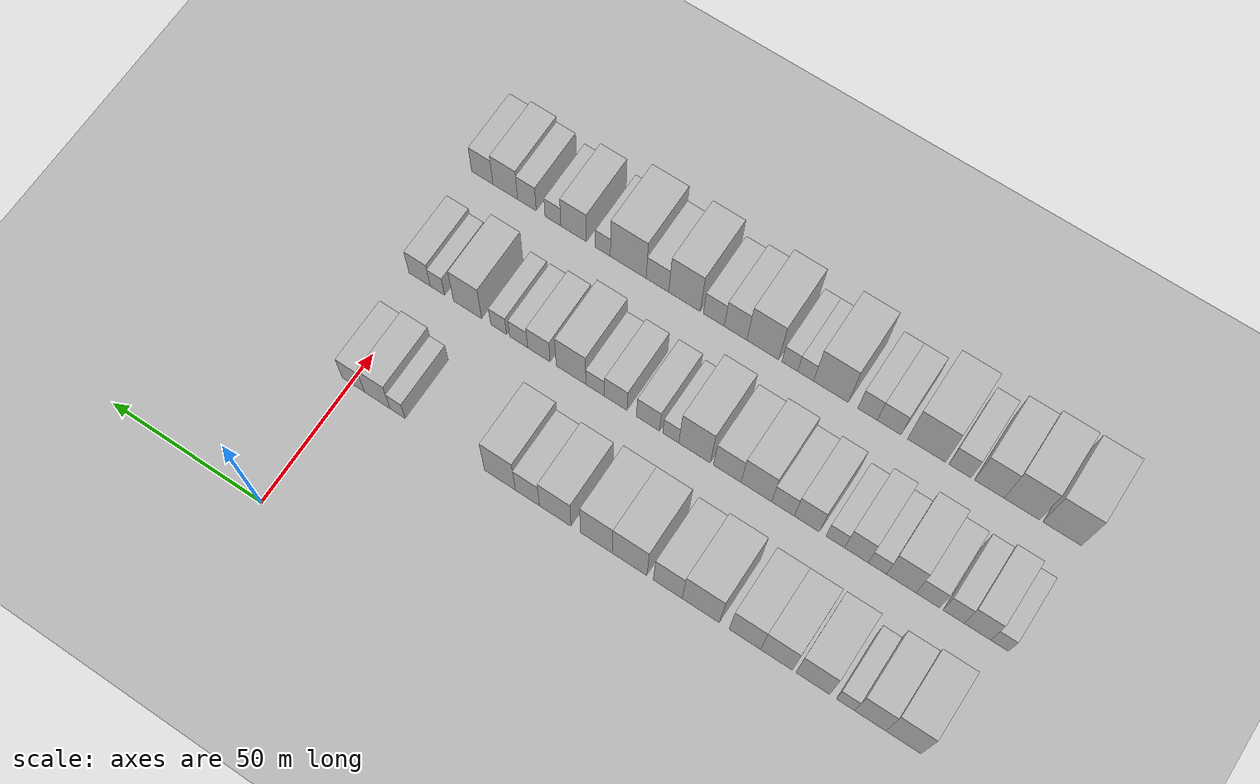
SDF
<sdf version="1.6">
 <world name="default">
  <include><name>ground_plane_1</name><uri>model://HANNAS_ground_plane</uri></include>
  <include>
   <name>ground_plane_2</name>
   <uri>model://HANNAS_ground_plane</uri>
   <pose>100 0 0  0 0 0</pose>
  </include>
  <model name="building_22">
   <static>1</static>
   <pose>50.0000 -173.2291 0 0.000000 0.000000 0.000000</pose>
   <link name="link">
    <pose>0 0 12.00 0 0 0</pose>
    <collision name="collision"><geometry><box><size>20.0000 10.2941 24.0000</size></box></geometry></collision>
    <visual name="visual">
     <cast_shadows>0</cast_shadows>
     <geometry><box><size>20.0000 10.2941 24.0000</size></box></geometry>
     <material>
      <script>
       <uri>model://HANNAS_wall/materials/scripts</uri>
       <uri>model://HANNAS_wall/materials/textures</uri>
       <name>vrc/HANNAS_wall</name>
      </script>
     </material>
    </visual>
   </link>
  </model>
  <model name="building_23">
   <static>1</static>
   <pose>50.0000 -163.5071 0 0.000000 0.000000 0.000000</pose>
   <link name="link">
    <pose>0 0 10.50 0 0 0</pose>
    <collision name="collision"><geometry><box><size>20.0000 9.1499 21.0000</size></box></geometry></collision>
    <visual name="visual">
     <cast_shadows>0</cast_shadows>
     <geometry><box><size>20.0000 9.1499 21.0000</size></box></geometry>
     <material>
      <script>
       <uri>model://HANNAS_wall/materials/scripts</uri>
       <uri>model://HANNAS_wall/materials/textures</uri>
       <name>vrc/HANNAS_wall</name>
      </script>
     </material>
    </visual>
   </link>
  </model>
  <model name="building_24">
   <static>1</static>
   <pose>50.0000 -156.1976 0 0.000000 0.000000 0.000000</pose>
   <link name="link">
    <pose>0 0 6.00 0 0 0</pose>
    <collision name="collision"><geometry><box><size>20.0000 5.4691 12.0000</size></box></geometry></collision>
    <visual name="visual">
     <cast_shadows>0</cast_shadows>
     <geometry><box><size>20.0000 5.4691 12.0000</size></box></geometry>
     <material>
      <script>
       <uri>model://HANNAS_wall/materials/scripts</uri>
       <uri>model://HANNAS_wall/materials/textures</uri>
       <name>vrc/HANNAS_wall</name>
      </script>
     </material>
    </visual>
   </link>
  </model>
  <model name="building_25">
   <static>1</static>
   <pose>50.0000 -146.3815 0 0.000000 0.000000 0.000000</pose>
   <link name="link">
    <pose>0 0 10.50 0 0 0</pose>
    <collision name="collision"><geometry><box><size>20.0000 10.1630 21.0000</size></box></geometry></collision>
    <visual name="visual">
     <cast_shadows>0</cast_shadows>
     <geometry><box><size>20.0000 10.1630 21.0000</size></box></geometry>
     <material>
      <script>
       <uri>model://HANNAS_wall/materials/scripts</uri>
       <uri>model://HANNAS_wall/materials/textures</uri>
       <name>vrc/HANNAS_wall</name>
      </script>
     </material>
    </visual>
   </link>
  </model>
  <model name="building_26">
   <static>1</static>
   <pose>50.0000 -135.4872 0 0.000000 0.000000 0.000000</pose>
   <link name="link">
    <pose>0 0 10.50 0 0 0</pose>
    <collision name="collision"><geometry><box><size>20.0000 9.6257 21.0000</size></box></geometry></collision>
    <visual name="visual">
     <cast_shadows>0</cast_shadows>
     <geometry><box><size>20.0000 9.6257 21.0000</size></box></geometry>
     <material>
      <script>
       <uri>model://HANNAS_wall/materials/scripts</uri>
       <uri>model://HANNAS_wall/materials/textures</uri>
       <name>vrc/HANNAS_wall</name>
      </script>
     </material>
    </visual>
   </link>
  </model>
  <model name="building_27">
   <static>1</static>
   <pose>50.0000 -125.8723 0 0.000000 0.000000 0.000000</pose>
   <link name="link">
    <pose>0 0 10.50 0 0 0</pose>
    <collision name="collision"><geometry><box><size>20.0000 9.6040 21.0000</size></box></geometry></collision>
    <visual name="visual">
     <cast_shadows>0</cast_shadows>
     <geometry><box><size>20.0000 9.6040 21.0000</size></box></geometry>
     <material>
      <script>
       <uri>model://HANNAS_wall/materials/scripts</uri>
       <uri>model://HANNAS_wall/materials/textures</uri>
       <name>vrc/HANNAS_wall</name>
      </script>
     </material>
    </visual>
   </link>
  </model>
  <model name="building_28">
   <static>1</static>
   <pose>50.0000 -112.3370 0 0.000000 0.000000 0.000000</pose>
   <link name="link">
    <pose>0 0 12.00 0 0 0</pose>
    <collision name="collision"><geometry><box><size>20.0000 11.4666 24.0000</size></box></geometry></collision>
    <visual name="visual">
     <cast_shadows>0</cast_shadows>
     <geometry><box><size>20.0000 11.4666 24.0000</size></box></geometry>
     <material>
      <script>
       <uri>model://HANNAS_wall/materials/scripts</uri>
       <uri>model://HANNAS_wall/materials/textures</uri>
       <name>vrc/HANNAS_wall</name>
      </script>
     </material>
    </visual>
   </link>
  </model>
  <model name="building_29">
   <static>1</static>
   <pose>50.0000 -102.1314 0 0.000000 0.000000 0.000000</pose>
   <link name="link">
    <pose>0 0 10.50 0 0 0</pose>
    <collision name="collision"><geometry><box><size>20.0000 8.9447 21.0000</size></box></geometry></collision>
    <visual name="visual">
     <cast_shadows>0</cast_shadows>
     <geometry><box><size>20.0000 8.9447 21.0000</size></box></geometry>
     <material>
      <script>
       <uri>model://HANNAS_wall/materials/scripts</uri>
       <uri>model://HANNAS_wall/materials/textures</uri>
       <name>vrc/HANNAS_wall</name>
      </script>
     </material>
    </visual>
   </link>
  </model>
  <model name="building_30">
   <static>1</static>
   <pose>50.0000 -90.2336 0 0.000000 0.000000 0.000000</pose>
   <link name="link">
    <pose>0 0 12.00 0 0 0</pose>
    <collision name="collision"><geometry><box><size>20.0000 10.8509 24.0000</size></box></geometry></collision>
    <visual name="visual">
     <cast_shadows>0</cast_shadows>
     <geometry><box><size>20.0000 10.8509 24.0000</size></box></geometry>
     <material>
      <script>
       <uri>model://HANNAS_wall/materials/scripts</uri>
       <uri>model://HANNAS_wall/materials/textures</uri>
       <name>vrc/HANNAS_wall</name>
      </script>
     </material>
    </visual>
   </link>
  </model>
  <model name="building_31">
   <static>1</static>
   <pose>50.0000 -79.8051 0 0.000000 0.000000 0.000000</pose>
   <link name="link">
    <pose>0 0 12.00 0 0 0</pose>
    <collision name="collision"><geometry><box><size>20.0000 10.0059 24.0000</size></box></geometry></collision>
    <visual name="visual">
     <cast_shadows>0</cast_shadows>
     <geometry><box><size>20.0000 10.0059 24.0000</size></box></geometry>
     <material>
      <script>
       <uri>model://HANNAS_wall/materials/scripts</uri>
       <uri>model://HANNAS_wall/materials/textures</uri>
       <name>vrc/HANNAS_wall</name>
      </script>
     </material>
    </visual>
   </link>
  </model>
  <model name="building_32">
   <static>1</static>
   <pose>50.0000 -66.7975 0 0.000000 0.000000 0.000000</pose>
   <link name="link">
    <pose>0 0 10.50 0 0 0</pose>
    <collision name="collision"><geometry><box><size>20.0000 10.0093 21.0000</size></box></geometry></collision>
    <visual name="visual">
     <cast_shadows>0</cast_shadows>
     <geometry><box><size>20.0000 10.0093 21.0000</size></box></geometry>
     <material>
      <script>
       <uri>model://HANNAS_wall/materials/scripts</uri>
       <uri>model://HANNAS_wall/materials/textures</uri>
       <name>vrc/HANNAS_wall</name>
      </script>
     </material>
    </visual>
   </link>
  </model>
  <model name="building_33">
   <static>1</static>
   <pose>50.0000 -57.9215 0 0.000000 0.000000 0.000000</pose>
   <link name="link">
    <pose>0 0 9.00 0 0 0</pose>
    <collision name="collision"><geometry><box><size>20.0000 7.7427 18.0000</size></box></geometry></collision>
    <visual name="visual">
     <cast_shadows>0</cast_shadows>
     <geometry><box><size>20.0000 7.7427 18.0000</size></box></geometry>
     <material>
      <script>
       <uri>model://HANNAS_wall/materials/scripts</uri>
       <uri>model://HANNAS_wall/materials/textures</uri>
       <name>vrc/HANNAS_wall</name>
      </script>
     </material>
    </visual>
   </link>
  </model>
  <model name="building_34">
   <static>1</static>
   <pose>50.0000 -49.0845 0 0.000000 0.000000 0.000000</pose>
   <link name="link">
    <pose>0 0 12.00 0 0 0</pose>
    <collision name="collision"><geometry><box><size>20.0000 9.9313 24.0000</size></box></geometry></collision>
    <visual name="visual">
     <cast_shadows>0</cast_shadows>
     <geometry><box><size>20.0000 9.9313 24.0000</size></box></geometry>
     <material>
      <script>
       <uri>model://HANNAS_wall/materials/scripts</uri>
       <uri>model://HANNAS_wall/materials/textures</uri>
       <name>vrc/HANNAS_wall</name>
      </script>
     </material>
    </visual>
   </link>
  </model>
  <model name="building_35">
   <static>1</static>
   <pose>50.0000 -15.6413 0 0.000000 0.000000 0.000000</pose>
   <link name="link">
    <pose>0 0 6.00 0 0 0</pose>
    <collision name="collision"><geometry><box><size>20.0000 4.9850 12.0000</size></box></geometry></collision>
    <visual name="visual">
     <cast_shadows>0</cast_shadows>
     <geometry><box><size>20.0000 4.9850 12.0000</size></box></geometry>
     <material>
      <script>
       <uri>model://HANNAS_wall/materials/scripts</uri>
       <uri>model://HANNAS_wall/materials/textures</uri>
       <name>vrc/HANNAS_wall</name>
      </script>
     </material>
    </visual>
   </link>
  </model>
  <model name="building_36">
   <static>1</static>
   <pose>50.0000 -8.9011 0 0.000000 0.000000 0.000000</pose>
   <link name="link">
    <pose>0 0 9.00 0 0 0</pose>
    <collision name="collision"><geometry><box><size>20.0000 8.4952 18.0000</size></box></geometry></collision>
    <visual name="visual">
     <cast_shadows>0</cast_shadows>
     <geometry><box><size>20.0000 8.4952 18.0000</size></box></geometry>
     <material>
      <script>
       <uri>model://HANNAS_wall/materials/scripts</uri>
       <uri>model://HANNAS_wall/materials/textures</uri>
       <name>vrc/HANNAS_wall</name>
      </script>
     </material>
    </visual>
   </link>
  </model>
  <model name="building_37">
   <static>1</static>
   <pose>50.0000 -0.9262 0 0.000000 0.000000 0.000000</pose>
   <link name="link">
    <pose>0 0 7.50 0 0 0</pose>
    <collision name="collision"><geometry><box><size>20.0000 7.4545 15.0000</size></box></geometry></collision>
    <visual name="visual">
     <cast_shadows>0</cast_shadows>
     <geometry><box><size>20.0000 7.4545 15.0000</size></box></geometry>
     <material>
      <script>
       <uri>model://HANNAS_wall/materials/scripts</uri>
       <uri>model://HANNAS_wall/materials/textures</uri>
       <name>vrc/HANNAS_wall</name>
      </script>
     </material>
    </visual>
   </link>
  </model>
  <model name="building_100">
   <static>1</static>
   <pose>85.0000 -181.3125 0 0.000000 0.000000 0.000000</pose>
   <link name="link">
    <pose>0 0 6.00 0 0 0</pose>
    <collision name="collision"><geometry><box><size>20.0000 5.2404 12.0000</size></box></geometry></collision>
    <visual name="visual">
     <cast_shadows>0</cast_shadows>
     <geometry><box><size>20.0000 5.2404 12.0000</size></box></geometry>
     <material>
      <script>
       <uri>model://HANNAS_wall/materials/scripts</uri>
       <uri>model://HANNAS_wall/materials/textures</uri>
       <name>vrc/HANNAS_wall</name>
      </script>
     </material>
    </visual>
   </link>
  </model>
  <model name="building_101">
   <static>1</static>
   <pose>85.0000 -174.7684 0 0.000000 0.000000 0.000000</pose>
   <link name="link">
    <pose>0 0 9.00 0 0 0</pose>
    <collision name="collision"><geometry><box><size>20.0000 7.8477 18.0000</size></box></geometry></collision>
    <visual name="visual">
     <cast_shadows>0</cast_shadows>
     <geometry><box><size>20.0000 7.8477 18.0000</size></box></geometry>
     <material>
      <script>
       <uri>model://HANNAS_wall/materials/scripts</uri>
       <uri>model://HANNAS_wall/materials/textures</uri>
       <name>vrc/HANNAS_wall</name>
      </script>
     </material>
    </visual>
   </link>
  </model>
  <model name="building_102">
   <static>1</static>
   <pose>85.0000 -167.6820 0 0.000000 0.000000 0.000000</pose>
   <link name="link">
    <pose>0 0 7.50 0 0 0</pose>
    <collision name="collision"><geometry><box><size>20.0000 6.3252 15.0000</size></box></geometry></collision>
    <visual name="visual">
     <cast_shadows>0</cast_shadows>
     <geometry><box><size>20.0000 6.3252 15.0000</size></box></geometry>
     <material>
      <script>
       <uri>model://HANNAS_wall/materials/scripts</uri>
       <uri>model://HANNAS_wall/materials/textures</uri>
       <name>vrc/HANNAS_wall</name>
      </script>
     </material>
    </visual>
   </link>
  </model>
  <model name="building_103">
   <static>1</static>
   <pose>85.0000 -159.9859 0 0.000000 0.000000 0.000000</pose>
   <link name="link">
    <pose>0 0 7.50 0 0 0</pose>
    <collision name="collision"><geometry><box><size>20.0000 7.0670 15.0000</size></box></geometry></collision>
    <visual name="visual">
     <cast_shadows>0</cast_shadows>
     <geometry><box><size>20.0000 7.0670 15.0000</size></box></geometry>
     <material>
      <script>
       <uri>model://HANNAS_wall/materials/scripts</uri>
       <uri>model://HANNAS_wall/materials/textures</uri>
       <name>vrc/HANNAS_wall</name>
      </script>
     </material>
    </visual>
   </link>
  </model>
  <model name="building_104">
   <static>1</static>
   <pose>85.0000 -151.9677 0 0.000000 0.000000 0.000000</pose>
   <link name="link">
    <pose>0 0 10.50 0 0 0</pose>
    <collision name="collision"><geometry><box><size>20.0000 8.9695 21.0000</size></box></geometry></collision>
    <visual name="visual">
     <cast_shadows>0</cast_shadows>
     <geometry><box><size>20.0000 8.9695 21.0000</size></box></geometry>
     <material>
      <script>
       <uri>model://HANNAS_wall/materials/scripts</uri>
       <uri>model://HANNAS_wall/materials/textures</uri>
       <name>vrc/HANNAS_wall</name>
      </script>
     </material>
    </visual>
   </link>
  </model>
  <model name="building_105">
   <static>1</static>
   <pose>85.0000 -144.7261 0 0.000000 0.000000 0.000000</pose>
   <link name="link">
    <pose>0 0 6.00 0 0 0</pose>
    <collision name="collision"><geometry><box><size>20.0000 5.5137 12.0000</size></box></geometry></collision>
    <visual name="visual">
     <cast_shadows>0</cast_shadows>
     <geometry><box><size>20.0000 5.5137 12.0000</size></box></geometry>
     <material>
      <script>
       <uri>model://HANNAS_wall/materials/scripts</uri>
       <uri>model://HANNAS_wall/materials/textures</uri>
       <name>vrc/HANNAS_wall</name>
      </script>
     </material>
    </visual>
   </link>
  </model>
  <model name="building_106">
   <static>1</static>
   <pose>85.0000 -138.3611 0 0.000000 0.000000 0.000000</pose>
   <link name="link">
    <pose>0 0 9.00 0 0 0</pose>
    <collision name="collision"><geometry><box><size>20.0000 7.2162 18.0000</size></box></geometry></collision>
    <visual name="visual">
     <cast_shadows>0</cast_shadows>
     <geometry><box><size>20.0000 7.2162 18.0000</size></box></geometry>
     <material>
      <script>
       <uri>model://HANNAS_wall/materials/scripts</uri>
       <uri>model://HANNAS_wall/materials/textures</uri>
       <name>vrc/HANNAS_wall</name>
      </script>
     </material>
    </visual>
   </link>
  </model>
  <model name="building_107">
   <static>1</static>
   <pose>85.0000 -131.8904 0 0.000000 0.000000 0.000000</pose>
   <link name="link">
    <pose>0 0 6.00 0 0 0</pose>
    <collision name="collision"><geometry><box><size>20.0000 5.7251 12.0000</size></box></geometry></collision>
    <visual name="visual">
     <cast_shadows>0</cast_shadows>
     <geometry><box><size>20.0000 5.7251 12.0000</size></box></geometry>
     <material>
      <script>
       <uri>model://HANNAS_wall/materials/scripts</uri>
       <uri>model://HANNAS_wall/materials/textures</uri>
       <name>vrc/HANNAS_wall</name>
      </script>
     </material>
    </visual>
   </link>
  </model>
  <model name="building_108">
   <static>1</static>
   <pose>85.0000 -123.1505 0 0.000000 0.000000 0.000000</pose>
   <link name="link">
    <pose>0 0 9.00 0 0 0</pose>
    <collision name="collision"><geometry><box><size>20.0000 7.7548 18.0000</size></box></geometry></collision>
    <visual name="visual">
     <cast_shadows>0</cast_shadows>
     <geometry><box><size>20.0000 7.7548 18.0000</size></box></geometry>
     <material>
      <script>
       <uri>model://HANNAS_wall/materials/scripts</uri>
       <uri>model://HANNAS_wall/materials/textures</uri>
       <name>vrc/HANNAS_wall</name>
      </script>
     </material>
    </visual>
   </link>
  </model>
  <model name="building_109">
   <static>1</static>
   <pose>85.0000 -115.7322 0 0.000000 0.000000 0.000000</pose>
   <link name="link">
    <pose>0 0 7.50 0 0 0</pose>
    <collision name="collision"><geometry><box><size>20.0000 7.0819 15.0000</size></box></geometry></collision>
    <visual name="visual">
     <cast_shadows>0</cast_shadows>
     <geometry><box><size>20.0000 7.0819 15.0000</size></box></geometry>
     <material>
      <script>
       <uri>model://HANNAS_wall/materials/scripts</uri>
       <uri>model://HANNAS_wall/materials/textures</uri>
       <name>vrc/HANNAS_wall</name>
      </script>
     </material>
    </visual>
   </link>
  </model>
  <model name="building_110">
   <static>1</static>
   <pose>85.0000 -107.3983 0 0.000000 0.000000 0.000000</pose>
   <link name="link">
    <pose>0 0 10.50 0 0 0</pose>
    <collision name="collision"><geometry><box><size>20.0000 9.5858 21.0000</size></box></geometry></collision>
    <visual name="visual">
     <cast_shadows>0</cast_shadows>
     <geometry><box><size>20.0000 9.5858 21.0000</size></box></geometry>
     <material>
      <script>
       <uri>model://HANNAS_wall/materials/scripts</uri>
       <uri>model://HANNAS_wall/materials/textures</uri>
       <name>vrc/HANNAS_wall</name>
      </script>
     </material>
    </visual>
   </link>
  </model>
  <model name="building_111">
   <static>1</static>
   <pose>85.0000 -98.2823 0 0.000000 0.000000 0.000000</pose>
   <link name="link">
    <pose>0 0 9.00 0 0 0</pose>
    <collision name="collision"><geometry><box><size>20.0000 8.6464 18.0000</size></box></geometry></collision>
    <visual name="visual">
     <cast_shadows>0</cast_shadows>
     <geometry><box><size>20.0000 8.6464 18.0000</size></box></geometry>
     <material>
      <script>
       <uri>model://HANNAS_wall/materials/scripts</uri>
       <uri>model://HANNAS_wall/materials/textures</uri>
       <name>vrc/HANNAS_wall</name>
      </script>
     </material>
    </visual>
   </link>
  </model>
  <model name="building_112">
   <static>1</static>
   <pose>85.0000 -87.9550 0 0.000000 0.000000 0.000000</pose>
   <link name="link">
    <pose>0 0 12.00 0 0 0</pose>
    <collision name="collision"><geometry><box><size>20.0000 10.0081 24.0000</size></box></geometry></collision>
    <visual name="visual">
     <cast_shadows>0</cast_shadows>
     <geometry><box><size>20.0000 10.0081 24.0000</size></box></geometry>
     <material>
      <script>
       <uri>model://HANNAS_wall/materials/scripts</uri>
       <uri>model://HANNAS_wall/materials/textures</uri>
       <name>vrc/HANNAS_wall</name>
      </script>
     </material>
    </visual>
   </link>
  </model>
  <model name="building_113">
   <static>1</static>
   <pose>85.0000 -80.3990 0 0.000000 0.000000 0.000000</pose>
   <link name="link">
    <pose>0 0 6.00 0 0 0</pose>
    <collision name="collision"><geometry><box><size>20.0000 5.1041 12.0000</size></box></geometry></collision>
    <visual name="visual">
     <cast_shadows>0</cast_shadows>
     <geometry><box><size>20.0000 5.1041 12.0000</size></box></geometry>
     <material>
      <script>
       <uri>model://HANNAS_wall/materials/scripts</uri>
       <uri>model://HANNAS_wall/materials/textures</uri>
       <name>vrc/HANNAS_wall</name>
      </script>
     </material>
    </visual>
   </link>
  </model>
  <model name="building_114">
   <static>1</static>
   <pose>85.0000 -73.1239 0 0.000000 0.000000 0.000000</pose>
   <link name="link">
    <pose>0 0 7.50 0 0 0</pose>
    <collision name="collision"><geometry><box><size>20.0000 7.4460 15.0000</size></box></geometry></collision>
    <visual name="visual">
     <cast_shadows>0</cast_shadows>
     <geometry><box><size>20.0000 7.4460 15.0000</size></box></geometry>
     <material>
      <script>
       <uri>model://HANNAS_wall/materials/scripts</uri>
       <uri>model://HANNAS_wall/materials/textures</uri>
       <name>vrc/HANNAS_wall</name>
      </script>
     </material>
    </visual>
   </link>
  </model>
  <model name="building_115">
   <static>1</static>
   <pose>85.0000 -62.7270 0 0.000000 0.000000 0.000000</pose>
   <link name="link">
    <pose>0 0 7.50 0 0 0</pose>
    <collision name="collision"><geometry><box><size>20.0000 7.3480 15.0000</size></box></geometry></collision>
    <visual name="visual">
     <cast_shadows>0</cast_shadows>
     <geometry><box><size>20.0000 7.3480 15.0000</size></box></geometry>
     <material>
      <script>
       <uri>model://HANNAS_wall/materials/scripts</uri>
       <uri>model://HANNAS_wall/materials/textures</uri>
       <name>vrc/HANNAS_wall</name>
      </script>
     </material>
    </visual>
   </link>
  </model>
  <model name="building_116">
   <static>1</static>
   <pose>85.0000 -56.0540 0 0.000000 0.000000 0.000000</pose>
   <link name="link">
    <pose>0 0 6.00 0 0 0</pose>
    <collision name="collision"><geometry><box><size>20.0000 5.9980 12.0000</size></box></geometry></collision>
    <visual name="visual">
     <cast_shadows>0</cast_shadows>
     <geometry><box><size>20.0000 5.9980 12.0000</size></box></geometry>
     <material>
      <script>
       <uri>model://HANNAS_wall/materials/scripts</uri>
       <uri>model://HANNAS_wall/materials/textures</uri>
       <name>vrc/HANNAS_wall</name>
      </script>
     </material>
    </visual>
   </link>
  </model>
  <model name="building_117">
   <static>1</static>
   <pose>85.0000 -48.2228 0 0.000000 0.000000 0.000000</pose>
   <link name="link">
    <pose>0 0 10.50 0 0 0</pose>
    <collision name="collision"><geometry><box><size>20.0000 9.6644 21.0000</size></box></geometry></collision>
    <visual name="visual">
     <cast_shadows>0</cast_shadows>
     <geometry><box><size>20.0000 9.6644 21.0000</size></box></geometry>
     <material>
      <script>
       <uri>model://HANNAS_wall/materials/scripts</uri>
       <uri>model://HANNAS_wall/materials/textures</uri>
       <name>vrc/HANNAS_wall</name>
      </script>
     </material>
    </visual>
   </link>
  </model>
  <model name="building_118">
   <static>1</static>
   <pose>85.0000 -37.6933 0 0.000000 0.000000 0.000000</pose>
   <link name="link">
    <pose>0 0 7.50 0 0 0</pose>
    <collision name="collision"><geometry><box><size>20.0000 7.3948 15.0000</size></box></geometry></collision>
    <visual name="visual">
     <cast_shadows>0</cast_shadows>
     <geometry><box><size>20.0000 7.3948 15.0000</size></box></geometry>
     <material>
      <script>
       <uri>model://HANNAS_wall/materials/scripts</uri>
       <uri>model://HANNAS_wall/materials/textures</uri>
       <name>vrc/HANNAS_wall</name>
      </script>
     </material>
    </visual>
   </link>
  </model>
  <model name="building_119">
   <static>1</static>
   <pose>85.0000 -31.0190 0 0.000000 0.000000 0.000000</pose>
   <link name="link">
    <pose>0 0 6.00 0 0 0</pose>
    <collision name="collision"><geometry><box><size>20.0000 5.9538 12.0000</size></box></geometry></collision>
    <visual name="visual">
     <cast_shadows>0</cast_shadows>
     <geometry><box><size>20.0000 5.9538 12.0000</size></box></geometry>
     <material>
      <script>
       <uri>model://HANNAS_wall/materials/scripts</uri>
       <uri>model://HANNAS_wall/materials/textures</uri>
       <name>vrc/HANNAS_wall</name>
      </script>
     </material>
    </visual>
   </link>
  </model>
  <model name="building_120">
   <static>1</static>
   <pose>85.0000 -24.3767 0 0.000000 0.000000 0.000000</pose>
   <link name="link">
    <pose>0 0 6.00 0 0 0</pose>
    <collision name="collision"><geometry><box><size>20.0000 5.3307 12.0000</size></box></geometry></collision>
    <visual name="visual">
     <cast_shadows>0</cast_shadows>
     <geometry><box><size>20.0000 5.3307 12.0000</size></box></geometry>
     <material>
      <script>
       <uri>model://HANNAS_wall/materials/scripts</uri>
       <uri>model://HANNAS_wall/materials/textures</uri>
       <name>vrc/HANNAS_wall</name>
      </script>
     </material>
    </visual>
   </link>
  </model>
  <model name="building_121">
   <static>1</static>
   <pose>85.0000 -14.0023 0 0.000000 0.000000 0.000000</pose>
   <link name="link">
    <pose>0 0 10.50 0 0 0</pose>
    <collision name="collision"><geometry><box><size>20.0000 9.4181 21.0000</size></box></geometry></collision>
    <visual name="visual">
     <cast_shadows>0</cast_shadows>
     <geometry><box><size>20.0000 9.4181 21.0000</size></box></geometry>
     <material>
      <script>
       <uri>model://HANNAS_wall/materials/scripts</uri>
       <uri>model://HANNAS_wall/materials/textures</uri>
       <name>vrc/HANNAS_wall</name>
      </script>
     </material>
    </visual>
   </link>
  </model>
  <model name="building_122">
   <static>1</static>
   <pose>85.0000 -3.8847 0 0.000000 0.000000 0.000000</pose>
   <link name="link">
    <pose>0 0 6.00 0 0 0</pose>
    <collision name="collision"><geometry><box><size>20.0000 4.8173 12.0000</size></box></geometry></collision>
    <visual name="visual">
     <cast_shadows>0</cast_shadows>
     <geometry><box><size>20.0000 4.8173 12.0000</size></box></geometry>
     <material>
      <script>
       <uri>model://HANNAS_wall/materials/scripts</uri>
       <uri>model://HANNAS_wall/materials/textures</uri>
       <name>vrc/HANNAS_wall</name>
      </script>
     </material>
    </visual>
   </link>
  </model>
  <model name="building_123">
   <static>1</static>
   <pose>85.0000 2.1303 0 0.000000 0.000000 0.000000</pose>
   <link name="link">
    <pose>0 0 7.50 0 0 0</pose>
    <collision name="collision"><geometry><box><size>20.0000 7.2125 15.0000</size></box></geometry></collision>
    <visual name="visual">
     <cast_shadows>0</cast_shadows>
     <geometry><box><size>20.0000 7.2125 15.0000</size></box></geometry>
     <material>
      <script>
       <uri>model://HANNAS_wall/materials/scripts</uri>
       <uri>model://HANNAS_wall/materials/textures</uri>
       <name>vrc/HANNAS_wall</name>
      </script>
     </material>
    </visual>
   </link>
  </model>
  <model name="building_186">
   <static>1</static>
   <pose>120.0000 -180.3613 0 0.000000 0.000000 0.000000</pose>
   <link name="link">
    <pose>0 0 12.00 0 0 0</pose>
    <collision name="collision"><geometry><box><size>20.0000 11.5537 24.0000</size></box></geometry></collision>
    <visual name="visual">
     <cast_shadows>0</cast_shadows>
     <geometry><box><size>20.0000 11.5537 24.0000</size></box></geometry>
     <material>
      <script>
       <uri>model://HANNAS_wall/materials/scripts</uri>
       <uri>model://HANNAS_wall/materials/textures</uri>
       <name>vrc/HANNAS_wall</name>
      </script>
     </material>
    </visual>
   </link>
  </model>
  <model name="building_187">
   <static>1</static>
   <pose>120.0000 -168.2312 0 0.000000 0.000000 0.000000</pose>
   <link name="link">
    <pose>0 0 12.00 0 0 0</pose>
    <collision name="collision"><geometry><box><size>20.0000 10.7064 24.0000</size></box></geometry></collision>
    <visual name="visual">
     <cast_shadows>0</cast_shadows>
     <geometry><box><size>20.0000 10.7064 24.0000</size></box></geometry>
     <material>
      <script>
       <uri>model://HANNAS_wall/materials/scripts</uri>
       <uri>model://HANNAS_wall/materials/textures</uri>
       <name>vrc/HANNAS_wall</name>
      </script>
     </material>
    </visual>
   </link>
  </model>
  <model name="building_188">
   <static>1</static>
   <pose>120.0000 -158.3553 0 0.000000 0.000000 0.000000</pose>
   <link name="link">
    <pose>0 0 10.50 0 0 0</pose>
    <collision name="collision"><geometry><box><size>20.0000 9.0455 21.0000</size></box></geometry></collision>
    <visual name="visual">
     <cast_shadows>0</cast_shadows>
     <geometry><box><size>20.0000 9.0455 21.0000</size></box></geometry>
     <material>
      <script>
       <uri>model://HANNAS_wall/materials/scripts</uri>
       <uri>model://HANNAS_wall/materials/textures</uri>
       <name>vrc/HANNAS_wall</name>
      </script>
     </material>
    </visual>
   </link>
  </model>
  <model name="building_189">
   <static>1</static>
   <pose>120.0000 -149.4217 0 0.000000 0.000000 0.000000</pose>
   <link name="link">
    <pose>0 0 7.50 0 0 0</pose>
    <collision name="collision"><geometry><box><size>20.0000 6.8217 15.0000</size></box></geometry></collision>
    <visual name="visual">
     <cast_shadows>0</cast_shadows>
     <geometry><box><size>20.0000 6.8217 15.0000</size></box></geometry>
     <material>
      <script>
       <uri>model://HANNAS_wall/materials/scripts</uri>
       <uri>model://HANNAS_wall/materials/textures</uri>
       <name>vrc/HANNAS_wall</name>
      </script>
     </material>
    </visual>
   </link>
  </model>
  <model name="building_190">
   <static>1</static>
   <pose>120.0000 -139.1376 0 0.000000 0.000000 0.000000</pose>
   <link name="link">
    <pose>0 0 12.00 0 0 0</pose>
    <collision name="collision"><geometry><box><size>20.0000 11.7465 24.0000</size></box></geometry></collision>
    <visual name="visual">
     <cast_shadows>0</cast_shadows>
     <geometry><box><size>20.0000 11.7465 24.0000</size></box></geometry>
     <material>
      <script>
       <uri>model://HANNAS_wall/materials/scripts</uri>
       <uri>model://HANNAS_wall/materials/textures</uri>
       <name>vrc/HANNAS_wall</name>
      </script>
     </material>
    </visual>
   </link>
  </model>
  <model name="building_191">
   <static>1</static>
   <pose>120.0000 -127.5662 0 0.000000 0.000000 0.000000</pose>
   <link name="link">
    <pose>0 0 7.50 0 0 0</pose>
    <collision name="collision"><geometry><box><size>20.0000 7.3964 15.0000</size></box></geometry></collision>
    <visual name="visual">
     <cast_shadows>0</cast_shadows>
     <geometry><box><size>20.0000 7.3964 15.0000</size></box></geometry>
     <material>
      <script>
       <uri>model://HANNAS_wall/materials/scripts</uri>
       <uri>model://HANNAS_wall/materials/textures</uri>
       <name>vrc/HANNAS_wall</name>
      </script>
     </material>
    </visual>
   </link>
  </model>
  <model name="building_192">
   <static>1</static>
   <pose>120.0000 -120.8120 0 0.000000 0.000000 0.000000</pose>
   <link name="link">
    <pose>0 0 7.50 0 0 0</pose>
    <collision name="collision"><geometry><box><size>20.0000 6.1120 15.0000</size></box></geometry></collision>
    <visual name="visual">
     <cast_shadows>0</cast_shadows>
     <geometry><box><size>20.0000 6.1120 15.0000</size></box></geometry>
     <material>
      <script>
       <uri>model://HANNAS_wall/materials/scripts</uri>
       <uri>model://HANNAS_wall/materials/textures</uri>
       <name>vrc/HANNAS_wall</name>
      </script>
     </material>
    </visual>
   </link>
  </model>
  <model name="building_193">
   <static>1</static>
   <pose>120.0000 -109.2578 0 0.000000 0.000000 0.000000</pose>
   <link name="link">
    <pose>0 0 12.00 0 0 0</pose>
    <collision name="collision"><geometry><box><size>20.0000 10.9964 24.0000</size></box></geometry></collision>
    <visual name="visual">
     <cast_shadows>0</cast_shadows>
     <geometry><box><size>20.0000 10.9964 24.0000</size></box></geometry>
     <material>
      <script>
       <uri>model://HANNAS_wall/materials/scripts</uri>
       <uri>model://HANNAS_wall/materials/textures</uri>
       <name>vrc/HANNAS_wall</name>
      </script>
     </material>
    </visual>
   </link>
  </model>
  <model name="building_194">
   <static>1</static>
   <pose>120.0000 -101.2297 0 0.000000 0.000000 0.000000</pose>
   <link name="link">
    <pose>0 0 6.00 0 0 0</pose>
    <collision name="collision"><geometry><box><size>20.0000 5.0599 12.0000</size></box></geometry></collision>
    <visual name="visual">
     <cast_shadows>0</cast_shadows>
     <geometry><box><size>20.0000 5.0599 12.0000</size></box></geometry>
     <material>
      <script>
       <uri>model://HANNAS_wall/materials/scripts</uri>
       <uri>model://HANNAS_wall/materials/textures</uri>
       <name>vrc/HANNAS_wall</name>
      </script>
     </material>
    </visual>
   </link>
  </model>
  <model name="building_195">
   <static>1</static>
   <pose>120.0000 -96.1833 0 0.000000 0.000000 0.000000</pose>
   <link name="link">
    <pose>0 0 6.00 0 0 0</pose>
    <collision name="collision"><geometry><box><size>20.0000 5.0329 12.0000</size></box></geometry></collision>
    <visual name="visual">
     <cast_shadows>0</cast_shadows>
     <geometry><box><size>20.0000 5.0329 12.0000</size></box></geometry>
     <material>
      <script>
       <uri>model://HANNAS_wall/materials/scripts</uri>
       <uri>model://HANNAS_wall/materials/textures</uri>
       <name>vrc/HANNAS_wall</name>
      </script>
     </material>
    </visual>
   </link>
  </model>
  <model name="building_196">
   <static>1</static>
   <pose>120.0000 -87.5626 0 0.000000 0.000000 0.000000</pose>
   <link name="link">
    <pose>0 0 12.00 0 0 0</pose>
    <collision name="collision"><geometry><box><size>20.0000 10.2086 24.0000</size></box></geometry></collision>
    <visual name="visual">
     <cast_shadows>0</cast_shadows>
     <geometry><box><size>20.0000 10.2086 24.0000</size></box></geometry>
     <material>
      <script>
       <uri>model://HANNAS_wall/materials/scripts</uri>
       <uri>model://HANNAS_wall/materials/textures</uri>
       <name>vrc/HANNAS_wall</name>
      </script>
     </material>
    </visual>
   </link>
  </model>
  <model name="building_197">
   <static>1</static>
   <pose>120.0000 -78.8030 0 0.000000 0.000000 0.000000</pose>
   <link name="link">
    <pose>0 0 9.00 0 0 0</pose>
    <collision name="collision"><geometry><box><size>20.0000 7.3107 18.0000</size></box></geometry></collision>
    <visual name="visual">
     <cast_shadows>0</cast_shadows>
     <geometry><box><size>20.0000 7.3107 18.0000</size></box></geometry>
     <material>
      <script>
       <uri>model://HANNAS_wall/materials/scripts</uri>
       <uri>model://HANNAS_wall/materials/textures</uri>
       <name>vrc/HANNAS_wall</name>
      </script>
     </material>
    </visual>
   </link>
  </model>
  <model name="building_198">
   <static>1</static>
   <pose>120.0000 -71.7562 0 0.000000 0.000000 0.000000</pose>
   <link name="link">
    <pose>0 0 7.50 0 0 0</pose>
    <collision name="collision"><geometry><box><size>20.0000 6.7829 15.0000</size></box></geometry></collision>
    <visual name="visual">
     <cast_shadows>0</cast_shadows>
     <geometry><box><size>20.0000 6.7829 15.0000</size></box></geometry>
     <material>
      <script>
       <uri>model://HANNAS_wall/materials/scripts</uri>
       <uri>model://HANNAS_wall/materials/textures</uri>
       <name>vrc/HANNAS_wall</name>
      </script>
     </material>
    </visual>
   </link>
  </model>
  <model name="building_199">
   <static>1</static>
   <pose>120.0000 -62.2067 0 0.000000 0.000000 0.000000</pose>
   <link name="link">
    <pose>0 0 12.00 0 0 0</pose>
    <collision name="collision"><geometry><box><size>20.0000 10.3161 24.0000</size></box></geometry></collision>
    <visual name="visual">
     <cast_shadows>0</cast_shadows>
     <geometry><box><size>20.0000 10.3161 24.0000</size></box></geometry>
     <material>
      <script>
       <uri>model://HANNAS_wall/materials/scripts</uri>
       <uri>model://HANNAS_wall/materials/textures</uri>
       <name>vrc/HANNAS_wall</name>
      </script>
     </material>
    </visual>
   </link>
  </model>
  <model name="building_200">
   <static>1</static>
   <pose>120.0000 -53.3232 0 0.000000 0.000000 0.000000</pose>
   <link name="link">
    <pose>0 0 7.50 0 0 0</pose>
    <collision name="collision"><geometry><box><size>20.0000 7.4510 15.0000</size></box></geometry></collision>
    <visual name="visual">
     <cast_shadows>0</cast_shadows>
     <geometry><box><size>20.0000 7.4510 15.0000</size></box></geometry>
     <material>
      <script>
       <uri>model://HANNAS_wall/materials/scripts</uri>
       <uri>model://HANNAS_wall/materials/textures</uri>
       <name>vrc/HANNAS_wall</name>
      </script>
     </material>
    </visual>
   </link>
  </model>
  <model name="building_201">
   <static>1</static>
   <pose>120.0000 -43.6879 0 0.000000 0.000000 0.000000</pose>
   <link name="link">
    <pose>0 0 12.00 0 0 0</pose>
    <collision name="collision"><geometry><box><size>20.0000 11.8195 24.0000</size></box></geometry></collision>
    <visual name="visual">
     <cast_shadows>0</cast_shadows>
     <geometry><box><size>20.0000 11.8195 24.0000</size></box></geometry>
     <material>
      <script>
       <uri>model://HANNAS_wall/materials/scripts</uri>
       <uri>model://HANNAS_wall/materials/textures</uri>
       <name>vrc/HANNAS_wall</name>
      </script>
     </material>
    </visual>
   </link>
  </model>
  <model name="building_202">
   <static>1</static>
   <pose>120.0000 -35.2938 0 0.000000 0.000000 0.000000</pose>
   <link name="link">
    <pose>0 0 6.00 0 0 0</pose>
    <collision name="collision"><geometry><box><size>20.0000 4.9688 12.0000</size></box></geometry></collision>
    <visual name="visual">
     <cast_shadows>0</cast_shadows>
     <geometry><box><size>20.0000 4.9688 12.0000</size></box></geometry>
     <material>
      <script>
       <uri>model://HANNAS_wall/materials/scripts</uri>
       <uri>model://HANNAS_wall/materials/textures</uri>
       <name>vrc/HANNAS_wall</name>
      </script>
     </material>
    </visual>
   </link>
  </model>
  <model name="building_203">
   <static>1</static>
   <pose>120.0000 -25.5083 0 0.000000 0.000000 0.000000</pose>
   <link name="link">
    <pose>0 0 9.00 0 0 0</pose>
    <collision name="collision"><geometry><box><size>20.0000 8.6022 18.0000</size></box></geometry></collision>
    <visual name="visual">
     <cast_shadows>0</cast_shadows>
     <geometry><box><size>20.0000 8.6022 18.0000</size></box></geometry>
     <material>
      <script>
       <uri>model://HANNAS_wall/materials/scripts</uri>
       <uri>model://HANNAS_wall/materials/textures</uri>
       <name>vrc/HANNAS_wall</name>
      </script>
     </material>
    </visual>
   </link>
  </model>
  <model name="building_204">
   <static>1</static>
   <pose>120.0000 -18.5545 0 0.000000 0.000000 0.000000</pose>
   <link name="link">
    <pose>0 0 6.00 0 0 0</pose>
    <collision name="collision"><geometry><box><size>20.0000 5.3055 12.0000</size></box></geometry></collision>
    <visual name="visual">
     <cast_shadows>0</cast_shadows>
     <geometry><box><size>20.0000 5.3055 12.0000</size></box></geometry>
     <material>
      <script>
       <uri>model://HANNAS_wall/materials/scripts</uri>
       <uri>model://HANNAS_wall/materials/textures</uri>
       <name>vrc/HANNAS_wall</name>
      </script>
     </material>
    </visual>
   </link>
  </model>
  <model name="building_205">
   <static>1</static>
   <pose>120.0000 -9.7486 0 0.000000 0.000000 0.000000</pose>
   <link name="link">
    <pose>0 0 7.50 0 0 0</pose>
    <collision name="collision"><geometry><box><size>20.0000 6.3061 15.0000</size></box></geometry></collision>
    <visual name="visual">
     <cast_shadows>0</cast_shadows>
     <geometry><box><size>20.0000 6.3061 15.0000</size></box></geometry>
     <material>
      <script>
       <uri>model://HANNAS_wall/materials/scripts</uri>
       <uri>model://HANNAS_wall/materials/textures</uri>
       <name>vrc/HANNAS_wall</name>
      </script>
     </material>
    </visual>
   </link>
  </model>
  <model name="building_206">
   <static>1</static>
   <pose>120.0000 -2.3595 0 0.000000 0.000000 0.000000</pose>
   <link name="link">
    <pose>0 0 9.00 0 0 0</pose>
    <collision name="collision"><geometry><box><size>20.0000 8.4722 18.0000</size></box></geometry></collision>
    <visual name="visual">
     <cast_shadows>0</cast_shadows>
     <geometry><box><size>20.0000 8.4722 18.0000</size></box></geometry>
     <material>
      <script>
       <uri>model://HANNAS_wall/materials/scripts</uri>
       <uri>model://HANNAS_wall/materials/textures</uri>
       <name>vrc/HANNAS_wall</name>
      </script>
     </material>
    </visual>
   </link>
  </model>
  <model name="building_207">
   <static>1</static>
   <pose>120.0000 5.5284 0 0.000000 0.000000 0.000000</pose>
   <link name="link">
    <pose>0 0 7.50 0 0 0</pose>
    <collision name="collision"><geometry><box><size>20.0000 7.3036 15.0000</size></box></geometry></collision>
    <visual name="visual">
     <cast_shadows>0</cast_shadows>
     <geometry><box><size>20.0000 7.3036 15.0000</size></box></geometry>
     <material>
      <script>
       <uri>model://HANNAS_wall/materials/scripts</uri>
       <uri>model://HANNAS_wall/materials/textures</uri>
       <name>vrc/HANNAS_wall</name>
      </script>
     </material>
    </visual>
   </link>
  </model>
 </world>
</sdf>
